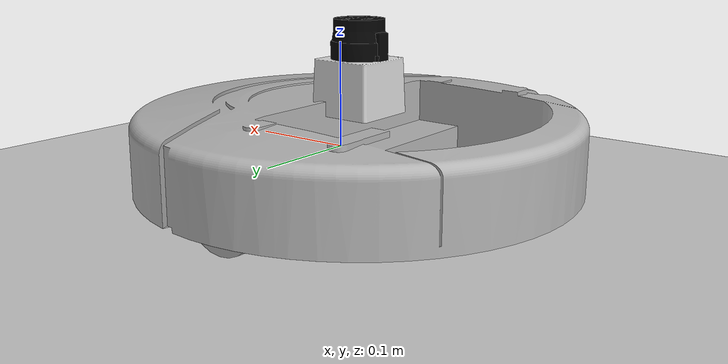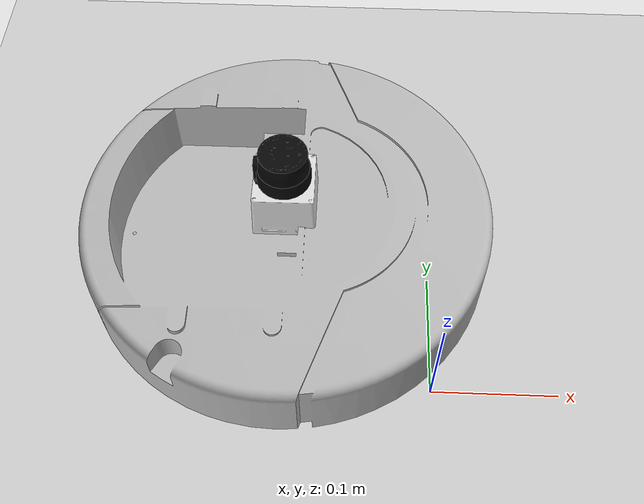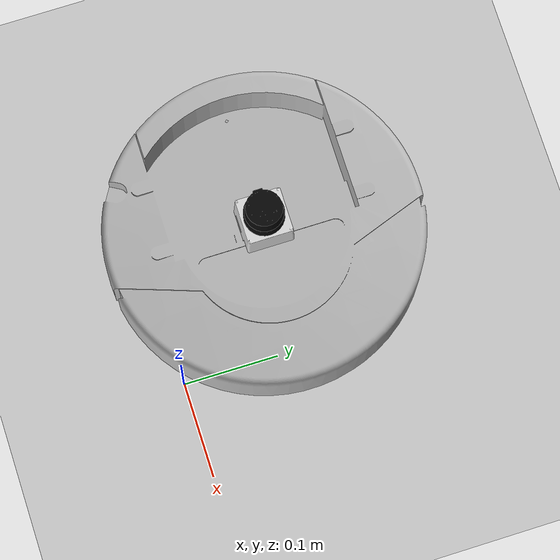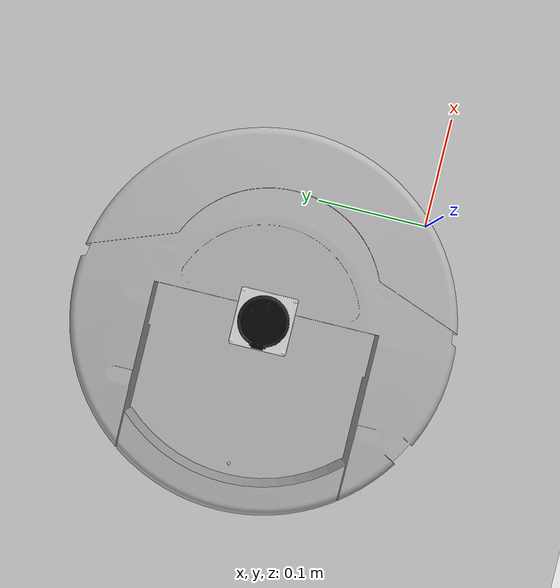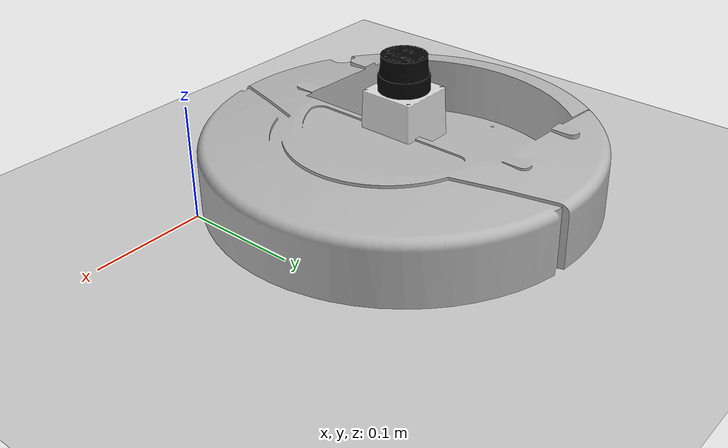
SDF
<sdf version="1.6">
 <world name="default">
  <light name="sun" type="directional">
   <pose>0 0 10 0 -0 0</pose>
   <diffuse>0.8 0.8 0.8 1</diffuse>
   <specular>0.2 0.2 0.2 1</specular>
   <attenuation>
    <range>1000</range>
    <constant>0.9</constant>
    <linear>0.01</linear>
    <quadratic>0.001</quadratic>
   </attenuation>
   <direction>-0.5 0.1 -0.9</direction>
  </light>
  <model name="ground_plane">
   <static>1</static>
   <link name="link">
    <collision name="collision">
     <geometry><plane><normal>0 0 1</normal><size>100 100</size></plane></geometry>
     <surface><friction><ode><mu>100</mu><mu2>50</mu2></ode></friction></surface>
    </collision>
    <visual name="visual">
     <cast_shadows>0</cast_shadows>
     <geometry><plane><normal>0 0 1</normal><size>100 100</size></plane></geometry>
     <material>
      <script><uri>file://media/materials/scripts/gazebo.material</uri><name>Gazebo/Grey</name></script>
     </material>
    </visual>
   </link>
  </model>
  <gravity>0 0 -9.8</gravity>
  <magnetic_field>6e-06 2.3e-05 -4.2e-05</magnetic_field>
  <atmosphere type="adiabatic"/>
  <physics name="default_physics" default="0" type="ode">
   <max_step_size>0.001</max_step_size>
   <real_time_factor>1</real_time_factor>
   <real_time_update_rate>1000</real_time_update_rate>
  </physics>
  <scene><ambient>0.4 0.4 0.4 1</ambient><background>0.7 0.7 0.7 1</background><shadows>1</shadows></scene>
  <spherical_coordinates>
   <surface_model>EARTH_WGS84</surface_model>
   <latitude_deg>0</latitude_deg>
   <longitude_deg>0</longitude_deg>
   <elevation>0</elevation>
   <heading_deg>0</heading_deg>
  </spherical_coordinates>
  <model name="roomba_1">
   <link name="base_link">
    <inertial>
     <pose>0.001453 -0.000453 0.029787 0 -0 0</pose>
     <inertia>
      <ixx>0.05864</ixx>
      <ixy>0.000124</ixy>
      <ixz>0.000615</ixz>
      <iyy>0.058786</iyy>
      <iyz>1.4e-05</iyz>
      <izz>1.53244</izz>
     </inertia>
     <mass>2.234</mass>
    </inertial>
    <sensor name="left_cliff_sensor" type="ray">
     <pose>0.07 0.14 0.027 0 1.57079 0</pose>
     <ray>
      <scan>
       <horizontal>
        <samples>1</samples>
        <resolution>1</resolution>
        <min_angle>0</min_angle>
        <max_angle>0</max_angle>
       </horizontal>
       <vertical><samples>1</samples><min_angle>0</min_angle><max_angle>0</max_angle></vertical>
      </scan>
      <range><min>0.01</min><max>0.04</max><resolution>0.1</resolution></range>
     </ray>
    </sensor>
    <sensor name="leftfront_cliff_sensor" type="ray">
     <pose>0.15 0.04 0.027 0 1.57079 0</pose>
     <ray>
      <scan>
       <horizontal>
        <samples>1</samples>
        <resolution>1</resolution>
        <min_angle>0</min_angle>
        <max_angle>0</max_angle>
       </horizontal>
       <vertical><samples>1</samples><min_angle>0</min_angle><max_angle>0</max_angle></vertical>
      </scan>
      <range><min>0.01</min><max>0.04</max><resolution>0.1</resolution></range>
     </ray>
    </sensor>
    <sensor name="right_cliff_sensor" type="ray">
     <pose>0.07 -0.14 0.027 0 1.57079 0</pose>
     <ray>
      <scan>
       <horizontal>
        <samples>1</samples>
        <resolution>1</resolution>
        <min_angle>0</min_angle>
        <max_angle>0</max_angle>
       </horizontal>
       <vertical><samples>1</samples><min_angle>0</min_angle><max_angle>0</max_angle></vertical>
      </scan>
      <range><min>0.01</min><max>0.04</max><resolution>0.1</resolution></range>
     </ray>
    </sensor>
    <sensor name="rightfront_cliff_sensor" type="ray">
     <pose>0.15 -0.04 0.027 0 1.57079 0</pose>
     <ray>
      <scan>
       <horizontal>
        <samples>1</samples>
        <resolution>1</resolution>
        <min_angle>0</min_angle>
        <max_angle>0</max_angle>
       </horizontal>
       <vertical><samples>1</samples><min_angle>0</min_angle><max_angle>0</max_angle></vertical>
      </scan>
      <range><min>0.01</min><max>0.04</max><resolution>0.1</resolution></range>
     </ray>
    </sensor>
    <sensor name="wall_sensor" type="ray">
     <pose>0.09 -0.12 0.059 0 0 -1</pose>
     <ray>
      <scan>
       <horizontal>
        <samples>1</samples>
        <resolution>1</resolution>
        <min_angle>0</min_angle>
        <max_angle>0</max_angle>
       </horizontal>
       <vertical><samples>1</samples><min_angle>0</min_angle><max_angle>0</max_angle></vertical>
      </scan>
      <range><min>0.016</min><max>0.04</max><resolution>0.1</resolution></range>
     </ray>
    </sensor>
    <visual name="base_visual">
     <pose>0 0 0.0478 0 -0 0</pose>
     <geometry><mesh><uri>model://create/meshes/create_body.dae</uri></mesh></geometry>
     <material><shader type="pixel"/><emissive>0 0 0 1</emissive></material>
    </visual>
    <visual name="front_wheel_visual">
     <pose>0.13 0 0.017 4.8e-05 1.5707 1.57075</pose>
     <geometry><sphere><radius>0.009</radius></sphere></geometry>
     <material><shader type="pixel"/><emissive>0 0 0 1</emissive></material>
    </visual>
    <visual name="rear_wheel_visual">
     <pose>-0.13 0 0.017 4.8e-05 1.5707 1.57075</pose>
     <geometry><sphere><radius>0.0075</radius></sphere></geometry>
     <material><shader type="pixel"/><emissive>0 0 0 1</emissive></material>
    </visual>
    <collision name="base_collision">
     <pose>0 0 0.0478 0 -0 0</pose>
     <geometry><cylinder><radius>0.016495</radius><length>0.061163</length></cylinder></geometry>
     <surface>
      <friction>
       <ode><mu>1</mu><mu2>1</mu2><fdir1>0 0 0</fdir1><slip1>0</slip1><slip2>0</slip2></ode>
       <torsional>
        <coefficient>1</coefficient>
        <patch_radius>0</patch_radius>
        <surface_radius>0</surface_radius>
        <use_patch_radius>1</use_patch_radius>
        <ode><slip>0</slip></ode>
       </torsional>
      </friction>
      <bounce><restitution_coefficient>0</restitution_coefficient><threshold>1e+06</threshold></bounce>
      <contact>
       <collide_without_contact>0</collide_without_contact>
       <collide_without_contact_bitmask>1</collide_without_contact_bitmask>
       <collide_bitmask>1</collide_bitmask>
       <ode>
        <soft_cfm>0</soft_cfm>
        <soft_erp>0.2</soft_erp>
        <kp>1e+13</kp>
        <kd>1</kd>
        <max_vel>0.01</max_vel>
        <min_depth>0</min_depth>
       </ode>
       <bullet>
        <split_impulse>1</split_impulse>
        <split_impulse_penetration_threshold>-0.01</split_impulse_penetration_threshold>
        <soft_cfm>0</soft_cfm>
        <soft_erp>0.2</soft_erp>
        <kp>1e+13</kp>
        <kd>1</kd>
       </bullet>
      </contact>
     </surface>
    </collision>
    <collision name="front_wheel_collision">
     <pose>0.13 0 0.017 -0 1.5707 1.5707</pose>
     <geometry><sphere><radius>0.018</radius></sphere></geometry>
     <surface>
      <friction>
       <ode><mu>0</mu><mu2>0</mu2><fdir1>0 0 0</fdir1><slip1>0</slip1><slip2>0</slip2></ode>
       <torsional>
        <coefficient>1</coefficient>
        <patch_radius>0</patch_radius>
        <surface_radius>0</surface_radius>
        <use_patch_radius>1</use_patch_radius>
        <ode><slip>0</slip></ode>
       </torsional>
      </friction>
      <bounce><restitution_coefficient>0</restitution_coefficient><threshold>1e+06</threshold></bounce>
      <contact>
       <collide_without_contact>0</collide_without_contact>
       <collide_without_contact_bitmask>1</collide_without_contact_bitmask>
       <collide_bitmask>1</collide_bitmask>
       <ode>
        <soft_cfm>0</soft_cfm>
        <soft_erp>0.2</soft_erp>
        <kp>1e+13</kp>
        <kd>1</kd>
        <max_vel>0.01</max_vel>
        <min_depth>0</min_depth>
       </ode>
       <bullet>
        <split_impulse>1</split_impulse>
        <split_impulse_penetration_threshold>-0.01</split_impulse_penetration_threshold>
        <soft_cfm>0</soft_cfm>
        <soft_erp>0.2</soft_erp>
        <kp>1e+13</kp>
        <kd>1</kd>
       </bullet>
      </contact>
     </surface>
    </collision>
    <collision name="rear_wheel_collision">
     <pose>-0.13 0 0.017 -0 1.5707 1.5707</pose>
     <geometry><sphere><radius>0.015</radius></sphere></geometry>
     <surface>
      <friction>
       <ode><mu>0</mu><mu2>0</mu2><fdir1>0 0 0</fdir1><slip1>0</slip1><slip2>0</slip2></ode>
       <torsional>
        <coefficient>1</coefficient>
        <patch_radius>0</patch_radius>
        <surface_radius>0</surface_radius>
        <use_patch_radius>1</use_patch_radius>
        <ode><slip>0</slip></ode>
       </torsional>
      </friction>
      <bounce><restitution_coefficient>0</restitution_coefficient><threshold>1e+06</threshold></bounce>
      <contact>
       <collide_without_contact>0</collide_without_contact>
       <collide_without_contact_bitmask>1</collide_without_contact_bitmask>
       <collide_bitmask>1</collide_bitmask>
       <ode>
        <soft_cfm>0</soft_cfm>
        <soft_erp>0.2</soft_erp>
        <kp>1e+13</kp>
        <kd>1</kd>
        <max_vel>0.01</max_vel>
        <min_depth>0</min_depth>
       </ode>
       <bullet>
        <split_impulse>1</split_impulse>
        <split_impulse_penetration_threshold>-0.01</split_impulse_penetration_threshold>
        <soft_cfm>0</soft_cfm>
        <soft_erp>0.2</soft_erp>
        <kp>1e+13</kp>
        <kd>1</kd>
       </bullet>
      </contact>
     </surface>
    </collision>
   </link>
   <link name="left_wheel">
    <pose>0 0.13 0.032 0 -0 0</pose>
    <inertial>
     <inertia><ixx>0.001</ixx><ixy>0</ixy><ixz>0</ixz><iyy>0.001</iyy><iyz>0</iyz><izz>0.001</izz></inertia>
     <mass>0.01</mass>
    </inertial>
    <visual name="visual">
     <pose>0 0 0 4.8e-05 1.5707 1.57075</pose>
     <geometry><cylinder><radius>0.033</radius><length>0.023</length></cylinder></geometry>
     <material><shader type="pixel"/></material>
    </visual>
    <collision name="collision">
     <pose>0 0 0 -0 1.5707 1.5707</pose>
     <geometry><cylinder><radius>0.033</radius><length>0.023</length></cylinder></geometry>
     <surface>
      <friction>
       <ode><mu>100</mu><mu2>100</mu2><fdir1>0 0 0</fdir1><slip1>0</slip1><slip2>0</slip2></ode>
       <torsional>
        <coefficient>1</coefficient>
        <patch_radius>0</patch_radius>
        <surface_radius>0</surface_radius>
        <use_patch_radius>1</use_patch_radius>
        <ode><slip>0</slip></ode>
       </torsional>
      </friction>
      <bounce><restitution_coefficient>0</restitution_coefficient><threshold>1e+06</threshold></bounce>
      <contact>
       <collide_without_contact>0</collide_without_contact>
       <collide_without_contact_bitmask>1</collide_without_contact_bitmask>
       <collide_bitmask>1</collide_bitmask>
       <ode>
        <soft_cfm>0</soft_cfm>
        <soft_erp>0.2</soft_erp>
        <kp>1e+13</kp>
        <kd>1</kd>
        <max_vel>0.01</max_vel>
        <min_depth>0</min_depth>
       </ode>
       <bullet>
        <split_impulse>1</split_impulse>
        <split_impulse_penetration_threshold>-0.01</split_impulse_penetration_threshold>
        <soft_cfm>0</soft_cfm>
        <soft_erp>0.2</soft_erp>
        <kp>1e+13</kp>
        <kd>1</kd>
       </bullet>
      </contact>
     </surface>
    </collision>
   </link>
   <link name="right_wheel">
    <pose>-0 -0.13 0.032 0 -0 0</pose>
    <inertial>
     <inertia><ixx>0.001</ixx><ixy>0</ixy><ixz>0</ixz><iyy>0.001</iyy><iyz>0</iyz><izz>0.001</izz></inertia>
     <mass>0.1</mass>
    </inertial>
    <visual name="visual">
     <pose>0 0 0 4.8e-05 1.5707 1.57075</pose>
     <geometry><cylinder><radius>0.033</radius><length>0.023</length></cylinder></geometry>
     <material><shader type="pixel"/></material>
    </visual>
    <collision name="collision">
     <pose>0 0 0 -0 1.5707 1.5707</pose>
     <geometry><cylinder><radius>0.033</radius><length>0.023</length></cylinder></geometry>
     <surface>
      <friction>
       <ode><mu>100</mu><mu2>100</mu2><fdir1>0 0 0</fdir1><slip1>0</slip1><slip2>0</slip2></ode>
       <torsional>
        <coefficient>1</coefficient>
        <patch_radius>0</patch_radius>
        <surface_radius>0</surface_radius>
        <use_patch_radius>1</use_patch_radius>
        <ode><slip>0</slip></ode>
       </torsional>
      </friction>
      <bounce><restitution_coefficient>0</restitution_coefficient><threshold>1e+06</threshold></bounce>
      <contact>
       <collide_without_contact>0</collide_without_contact>
       <collide_without_contact_bitmask>1</collide_without_contact_bitmask>
       <collide_bitmask>1</collide_bitmask>
       <ode>
        <soft_cfm>0</soft_cfm>
        <soft_erp>0.2</soft_erp>
        <kp>1e+13</kp>
        <kd>1</kd>
        <max_vel>0.01</max_vel>
        <min_depth>0</min_depth>
       </ode>
       <bullet>
        <split_impulse>1</split_impulse>
        <split_impulse_penetration_threshold>-0.01</split_impulse_penetration_threshold>
        <soft_cfm>0</soft_cfm>
        <soft_erp>0.2</soft_erp>
        <kp>1e+13</kp>
        <kd>1</kd>
       </bullet>
      </contact>
     </surface>
    </collision>
   </link>
   <link name="hokuyo">
    <pose>3.1e-05 -5e-06 0.102553 0 -0 0</pose>
    <inertial>
     <mass>0.1</mass>
     <inertia><ixx>1</ixx><ixy>0</ixy><ixz>0</ixz><iyy>1</iyy><iyz>0</iyz><izz>1</izz></inertia>
    </inertial>
    <visual name="visual"><geometry><mesh><uri>model://hokuyo/meshes/hokuyo.dae</uri></mesh></geometry></visual>
    <collision name="collision-base">
     <pose>0 0 -0.0145 0 -0 0</pose>
     <geometry><box><size>0.05 0.05 0.041</size></box></geometry>
    </collision>
    <collision name="collision-top">
     <pose>0 0 0.0205 0 -0 0</pose>
     <geometry><cylinder><radius>0.021</radius><length>0.029</length></cylinder></geometry>
    </collision>
    <sensor name="laser" type="ray">
     <pose>0.01 0 0.0175 0 -0 0</pose>
     <ray>
      <scan>
       <horizontal>
        <samples>640</samples>
        <resolution>1</resolution>
        <min_angle>-3.14159</min_angle>
        <max_angle>3.14159</max_angle>
       </horizontal>
       <vertical><samples>1</samples><min_angle>0</min_angle><max_angle>0</max_angle></vertical>
      </scan>
      <range><min>0.08</min><max>10</max><resolution>0.01</resolution></range>
     </ray>
     <plugin name="gazebo_ros_lidar_controller" filename="libgazebo_ros_laser.so">
      <topicName>/roomba_1/scan_s</topicName>
      <frameName>roomba_1/scan</frameName>
     </plugin>
     <plugin name="laser" filename="libRayPlugin.so"/>
     <always_on>1</always_on>
     <update_rate>30</update_rate>
     <visualize>1</visualize>
    </sensor>
   </link>
   <joint name="base_hokuyo_joint" type="fixed">
    <parent>base_link</parent>
    <child>hokuyo</child>
    <physics>
     <ode><limit><cfm>0</cfm><erp>0.2</erp></limit><suspension><cfm>0</cfm><erp>0.2</erp></suspension></ode>
    </physics>
   </joint>
   <joint name="left_wheel" type="revolute">
    <parent>base_link</parent>
    <child>left_wheel</child>
    <axis>
     <xyz>0 1 0</xyz>
     <use_parent_model_frame>1</use_parent_model_frame>
     <limit><lower>-1e+16</lower><upper>1e+16</upper><effort>-1</effort><velocity>-1</velocity></limit>
     <dynamics>
      <spring_reference>0</spring_reference>
      <spring_stiffness>0</spring_stiffness>
      <damping>0</damping>
      <friction>0</friction>
     </dynamics>
    </axis>
    <physics>
     <ode><limit><cfm>0</cfm><erp>0.2</erp></limit><suspension><cfm>0</cfm><erp>0.2</erp></suspension></ode>
    </physics>
   </joint>
   <joint name="right_wheel" type="revolute">
    <parent>base_link</parent>
    <child>right_wheel</child>
    <axis>
     <xyz>0 1 0</xyz>
     <use_parent_model_frame>1</use_parent_model_frame>
     <limit><lower>-1e+16</lower><upper>1e+16</upper><effort>-1</effort><velocity>-1</velocity></limit>
     <dynamics>
      <spring_reference>0</spring_reference>
      <spring_stiffness>0</spring_stiffness>
      <damping>0</damping>
      <friction>0</friction>
     </dynamics>
    </axis>
    <physics>
     <ode><limit><cfm>0</cfm><erp>0.2</erp></limit><suspension><cfm>0</cfm><erp>0.2</erp></suspension></ode>
    </physics>
   </joint>
   <static>0</static>
   <pose>-0.118371 0.122814 0.000934 -0.000107 -0.00275 -0.000209</pose>
   <plugin name="differential_drive_controller" filename="libgazebo_ros_diff_drive.so">
    <alwaysOn>1</alwaysOn>
    <updateRate>10</updateRate>
    <leftJoint>right_wheel</leftJoint>
    <rightJoint>left_wheel</rightJoint>
    <wheelSeparation>0.5380</wheelSeparation>
    <wheelDiameter>0.2410</wheelDiameter>
    <torque>20</torque>
    <commandTopic>cmd_vel</commandTopic>
    <odometryTopic>odom</odometryTopic>
    <odometryFrame>odom</odometryFrame>
    <robotBaseFrame>base_link</robotBaseFrame>
   </plugin>
  </model>
 </world>
</sdf>
